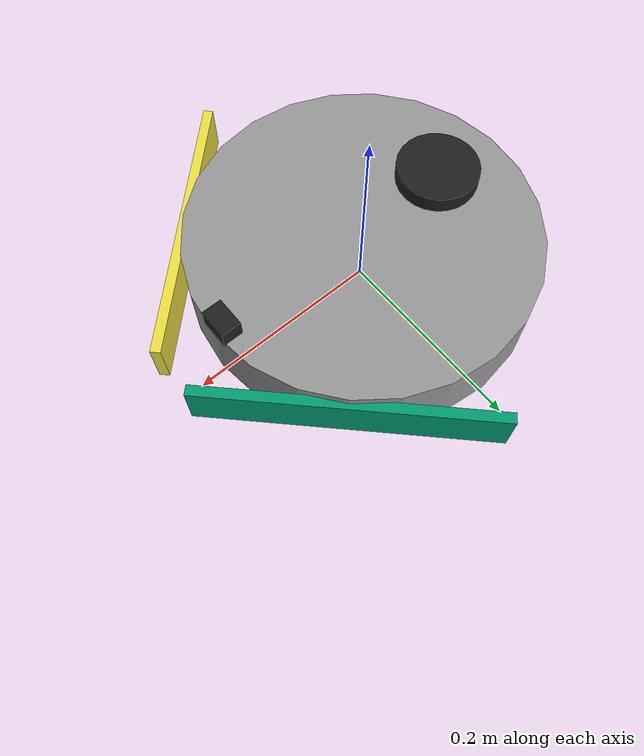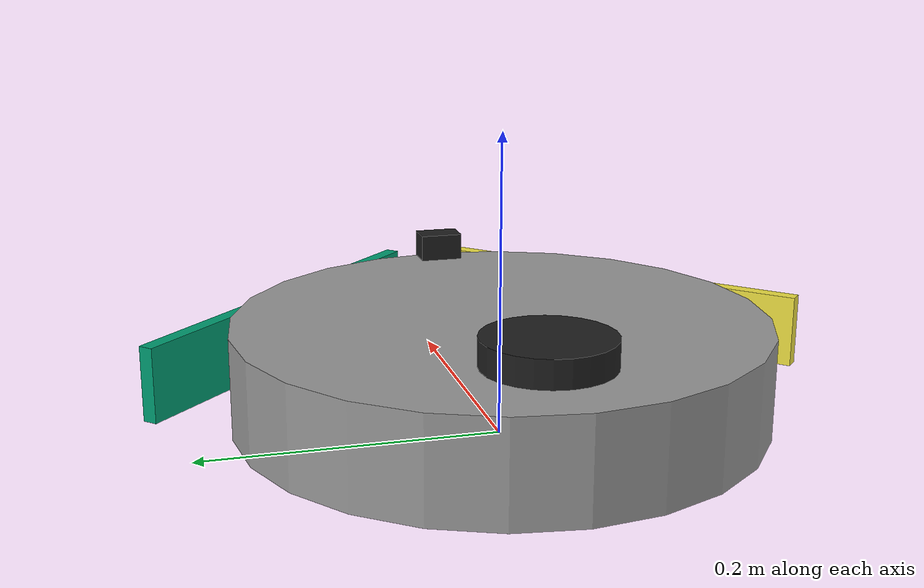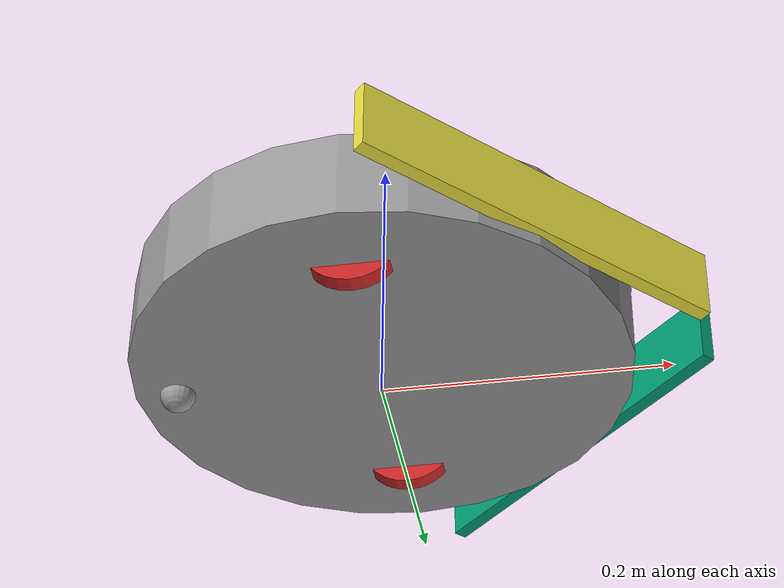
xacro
<?xml version="1.0" ?>
<robot name="rambla" xmlns:xacro="http://ros.org/wiki/xacro">
  <xacro:include filename="params.xacro" />
  <xacro:include filename="inertial.xacro" />
  <xacro:include filename="plugins.xacro" />
  <xacro:include filename="materials.xacro" />

  <xacro:macro name="bumper_half" params="name parent a0">
    <xacro:property name="ang" value="${a0 + 45}"/>
    <!-- Chord of the full 90-deg arc, padded 15% so it comfortably covers the
         arc's midpoint tangent without falling short at the edges. -->
    <xacro:property name="width" value="${2 * (base_diameter/2) * sin(0.5 * 90.0 * DEG2RAD) * 1.15}"/>

    <joint name="${name}_joint" type="fixed">
      <parent link="${parent}"/>
      <child link="${name}"/>
      <origin xyz="${(base_diameter/2)*cos(ang*DEG2RAD)} ${(base_diameter/2)*sin(ang*DEG2RAD)} ${bumper_z}"
              rpy="0 0 ${(ang+90)*DEG2RAD}"/>
    </joint>

    <gazebo reference="${name}_joint">
      <preserveFixedJoint>true</preserveFixedJoint>
    </gazebo>

    <link name="${name}">
      <visual>
        <origin xyz="0 0 0" rpy="0 0 0"/>
        <geometry>
          <box size="${width} ${bumper_thickness} ${bumper_height}"/>
        </geometry>
        <material name="dark"/>
      </visual>
      <collision>
        <origin xyz="0 0 0" rpy="0 0 0"/>
        <geometry>
          <box size="${width} ${bumper_thickness} ${bumper_height}"/>
        </geometry>
      </collision>
      <xacro:solid_box_inertia m="0.02" x="${width}" y="${bumper_thickness}" z="${bumper_height}"/>
    </link>
  </xacro:macro>

  <link name="base_footprint">
    <xacro:solid_box_inertia m="0.001" x="0.01" y="0.01" z="0.01"/>
  </link>

  <joint name="base_joint" type="fixed">
    <parent link="base_footprint"/>
    <child link="base_link"/>
    <origin xyz="0 0 ${floor_clearance}" rpy="0 0 0"/>
  </joint>

  <gazebo reference="base_joint">
    <preserveFixedJoint>true</preserveFixedJoint>
  </gazebo>

  <link name="base_link">
    <visual>
      <origin xyz="0 0 ${lower_cylinder_height/2}" rpy="0 0 0"/>
      <geometry>
        <cylinder length="${lower_cylinder_height}" radius="${base_diameter/2}"/>
      </geometry>
      <material name="grey"/>
    </visual>

    <collision>
      <origin xyz="0 0 ${lower_cylinder_height/2}" rpy="0 0 0"/>
      <geometry>
        <cylinder length="${lower_cylinder_height}" radius="${base_diameter/2}"/>
      </geometry>
    </collision>

    <xacro:solid_cylinder_inertia m="${lower_cylinder_mass}" r="${base_diameter/2}" h="${lower_cylinder_height}"/>
  </link>

  <xacro:bumper_half name="bumper_left" parent="base_link" a0="0"/>
  <xacro:bumper_half name="bumper_right" parent="base_link" a0="-90"/>

  <joint name="caster_joint" type="fixed">
    <parent link="base_link"/>
    <child link="caster_link"/>
    <origin xyz="${caster_inset-base_diameter/2} 0 ${caster_diameter/2-floor_clearance}" rpy="0 0 0"/>
  </joint>

  <link name="caster_link">
    <visual>
      <origin xyz="0 0 0" rpy="0 0 0"/>
      <geometry>
        <sphere radius="${caster_diameter/2}"/>
      </geometry>
      <material name="grey"/>
    </visual>

   <collision>
      <origin xyz="0 0 0" rpy="0 0 0"/>
      <geometry>
        <sphere radius="${caster_diameter/2}"/>
      </geometry>
    </collision>

    <xacro:solid_sphere_inertia m="${caster_mass}" r="${caster_diameter/2}"/>
  </link>

  <joint name="wheel_left_joint" type="continuous">
    <parent link="base_link"/>
    <child link="wheel_left_link"/>
    <origin xyz="0 ${wheel_base/2} ${wheel_diameter/2-floor_clearance}" rpy="-${pi/2} 0 0"/>
    <axis xyz="0 0 1">
      <limit>
        <effort>${motor_stall_torque}</effort>
      </limit>
    </axis>
  </joint>

  <link name="wheel_left_link">
    <visual>
      <origin xyz="0 0 0" rpy="0 0 0"/>
      <geometry>
        <cylinder length="${wheel_width}" radius="${wheel_diameter/2}"/>
      </geometry>
      <material name="red"/>
    </visual>

    <collision>
      <origin xyz="0 0 0" rpy="0 0 0"/>
      <geometry>
        <cylinder length="${wheel_width}" radius="${wheel_diameter/2}"/>
      </geometry>
    </collision>

    <xacro:solid_cylinder_inertia m="${wheel_mass}" r="${wheel_diameter/2}" h="${wheel_width}"/>
  </link>

  <joint name="wheel_right_joint" type="continuous">
    <parent link="base_link"/>
    <child link="wheel_right_link"/>
    <origin xyz="0 ${-wheel_base/2} ${wheel_diameter/2-floor_clearance}" rpy="-${pi/2} 0 0"/>
    <axis xyz="0 0 1">
      <limit>
        <effort>${motor_stall_torque}</effort>
      </limit>
    </axis>
  </joint>

  <link name="wheel_right_link">
    <visual>
      <origin xyz="0 0 0" rpy="0 0 0"/>
      <geometry>
        <cylinder length="${wheel_width}" radius="${wheel_diameter/2}"/>
      </geometry>
      <material name="red"/>
    </visual>

    <collision>
      <origin xyz="0 0 0" rpy="0 0 0"/>
      <geometry>
        <cylinder length="${wheel_width}" radius="${wheel_diameter/2}"/>
      </geometry>
    </collision>

    <xacro:solid_cylinder_inertia m="${wheel_mass}" r="${wheel_diameter/2}" h="${wheel_width}"/>
  </link>

  <!-- Upright top-mounted LiDAR turret (+Z up, CCW scan). -->
  <joint name="scan_joint" type="fixed">
    <parent link="base_link"/>
    <child link="base_scan"/>
    <origin xyz="${lidar_center_offset} 0 ${lower_cylinder_height + laser_puck_offset}" rpy="0 0 0"/>
  </joint>

  <gazebo reference="scan_joint">
    <preserveFixedJoint>true</preserveFixedJoint>
  </gazebo>

  <link name="base_scan">
    <visual>
      <origin xyz="0 0 0" rpy="0 0 0"/>
      <geometry>
        <cylinder length="${laser_puck_height}" radius="${laser_puck_diameter/2}"/>
      </geometry>
      <material name="black"/>
    </visual>

    <collision>
      <origin xyz="0 0 0" rpy="0 0 0"/>
      <geometry>
        <cylinder length="${laser_puck_height}" radius="${laser_puck_diameter/2}"/>
      </geometry>
    </collision>

    <xacro:solid_cylinder_inertia m="${laser_puck_mass}" r="${laser_puck_diameter/2}" h="${laser_puck_height}"/>
  </link>

  <!-- Forward-facing camera, mounted on the front edge of the body, above the
       front bumper band so the bumper doesn't occlude its field of view
       (see camera_z comment in params.xacro). -->
  <joint name="camera_joint" type="fixed">
    <parent link="base_link"/>
    <child link="camera_link"/>
    <origin xyz="${base_diameter/2 - camera_depth/2} 0 ${camera_z}" rpy="0 0 0"/>
  </joint>

  <link name="camera_link">
    <visual>
      <origin xyz="0 0 0" rpy="0 0 0"/>
      <geometry>
        <box size="${camera_depth} ${camera_width} ${camera_height}"/>
      </geometry>
      <material name="black"/>
    </visual>

    <collision>
      <origin xyz="0 0 0" rpy="0 0 0"/>
      <geometry>
        <box size="${camera_depth} ${camera_width} ${camera_height}"/>
      </geometry>
    </collision>

    <xacro:solid_box_inertia m="${camera_mass}" x="${camera_depth}" y="${camera_width}" z="${camera_height}"/>
  </link>

  <joint name="camera_optical_joint" type="fixed">
    <parent link="camera_link"/>
    <child link="camera_link_optical"/>
    <origin xyz="0 0 0" rpy="${-pi/2} 0 ${-pi/2}"/>
  </joint>

  <gazebo reference="camera_optical_joint">
    <preserveFixedJoint>true</preserveFixedJoint>
  </gazebo>

  <link name="camera_link_optical">
    <xacro:solid_box_inertia m="0.001" x="0.01" y="0.01" z="0.01"/>
  </link>

  <!-- IMU, placeholder chip at the geometric center of base_link. -->
  <joint name="imu_joint" type="fixed">
    <parent link="base_link"/>
    <child link="imu_link"/>
    <origin xyz="0 0 ${lower_cylinder_height/2}" rpy="0 0 0"/>
  </joint>

  <gazebo reference="imu_joint">
    <preserveFixedJoint>true</preserveFixedJoint>
  </gazebo>

  <link name="imu_link">
    <visual>
      <origin xyz="0 0 0" rpy="0 0 0"/>
      <geometry>
        <box size="${imu_size} ${imu_size} ${imu_size}"/>
      </geometry>
      <material name="black"/>
    </visual>

    <collision>
      <origin xyz="0 0 0" rpy="0 0 0"/>
      <geometry>
        <box size="${imu_size} ${imu_size} ${imu_size}"/>
      </geometry>
    </collision>

    <xacro:solid_box_inertia m="${imu_mass}" x="${imu_size}" y="${imu_size}" z="${imu_size}"/>
  </link>

</robot>

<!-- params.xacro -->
<robot xmlns:xacro="http://ros.org/wiki/xacro">
  <!-- ****************** ROBOT DIMENSIONS ****************** -->
  <!-- Units: meters, degrees, kg, N*m, m/s2 -->
  <xacro:property name="wheel_diameter" value="0.068"/>
  <xacro:property name="wheel_width" value="0.012"/>
  <xacro:property name="caster_diameter" value="0.025"/>
  <!-- Caster center to base edge -->
  <xacro:property name="caster_inset" value="0.030"/>
  <xacro:property name="floor_clearance" value="0.0125"/>
  <xacro:property name="base_diameter" value="0.349"/>
  <xacro:property name="wheel_base" value="0.235"/>
  <!-- Body cylinder: top is 79mm above the floor, minus 12.5mm floor gap = 66.5mm tall.
       LiDAR housing sits on top (body top 79mm + 18mm housing = ~97mm total height). -->
  <xacro:property name="lower_cylinder_height" value="0.0665"/>
  <!-- LiDAR housing, 18mm, seated flush on the body top -->
  <xacro:property name="laser_puck_height" value="0.018"/>
  <xacro:property name="laser_puck_diameter" value="0.083"/>
  <!-- offset = laser_puck_height/2 so the housing bottom sits at the body top -->
  <xacro:property name="laser_puck_offset" value="0.009"/>
  <!-- LiDAR turret sits toward the REAR of the body, not centered. +X is forward,
       so negative shifts it back. -->
  <xacro:property name="lidar_center_offset" value="-0.0965"/>

  <xacro:property name="motor_stall_torque" value="0.5"/>
  <xacro:property name="max_linear_acceleration" value="1"/>
  <xacro:property name="lower_cylinder_mass" value="2.500"/>
  <!-- caster and battery weight -->
  <xacro:property name="caster_mass" value="0.050"/>
  <xacro:property name="wheel_mass" value="0.100"/>
  <xacro:property name="laser_puck_mass" value="0.150"/>

  <xacro:property name="bumper_thickness" value="0.010"/> <!-- radial; outer face ~5mm proud -->
  <xacro:property name="bumper_height" value="0.050"/>
  <xacro:property name="bumper_z" value="0.033"/>     <!-- center height in base_link frame -->

  <xacro:property name="camera_width" value="0.03"/>
  <xacro:property name="camera_depth" value="0.02"/>
  <xacro:property name="camera_height" value="0.02"/>
  <xacro:property name="camera_mass" value="0.03"/>
  <xacro:property name="camera_z" value="0.075"/>

  <!-- IMU. No reference hardware yet - modelled as a small chip at the geometric
       center of base_link, no meaningful offset needed. -->
  <xacro:property name="imu_size" value="0.01"/>
  <xacro:property name="imu_mass" value="0.02"/>

  <xacro:property name="DEG2RAD" value="0.0174533"/>
</robot>
